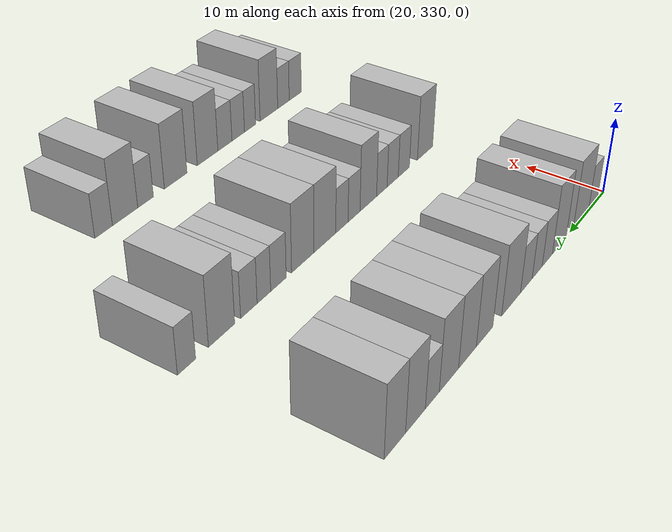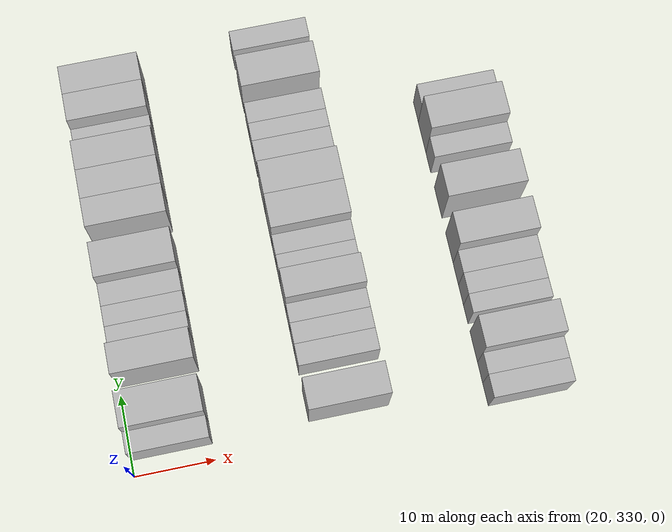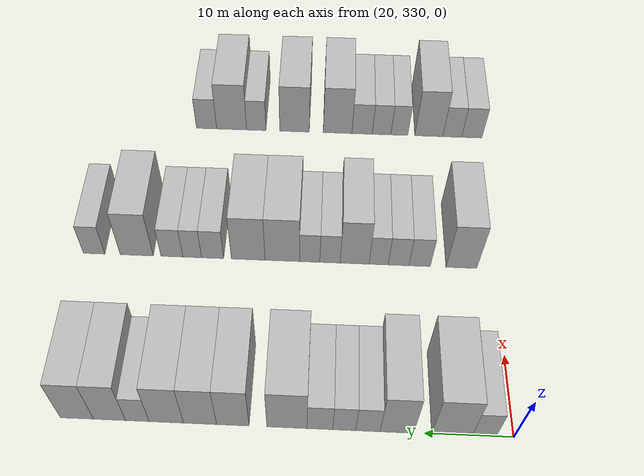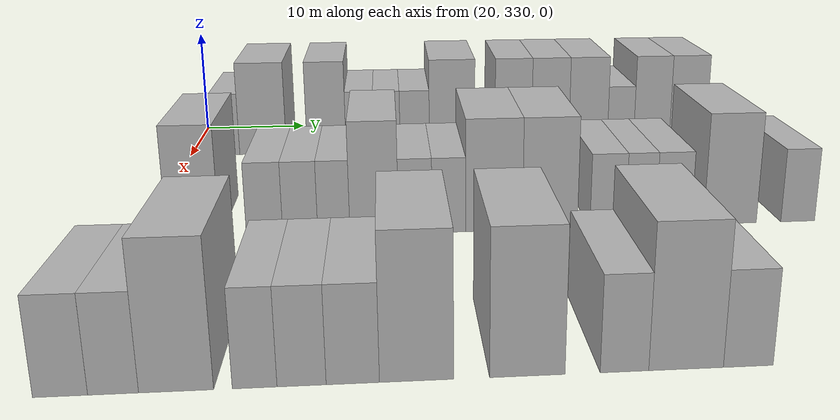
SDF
<sdf version="1.6">
 <world name="default">
  <model name="building_175">
   <static>1</static>
   <pose>25.0000 333.3231 0 0.000000 0.000000 0.000000</pose>
   <link name="link">
    <pose>0 0 3.00 0 0 0</pose>
    <collision name="collision"><geometry><box><size>10.0000 2.6648 6.0000</size></box></geometry></collision>
    <visual name="visual">
     <cast_shadows>0</cast_shadows>
     <geometry><box><size>10.0000 2.6648 6.0000</size></box></geometry>
     <material>
      <script>
       <uri>model://HANNAS_wall/materials/scripts</uri>
       <uri>model://HANNAS_wall/materials/textures</uri>
       <name>vrc/HANNAS_wall</name>
      </script>
     </material>
    </visual>
   </link>
  </model>
  <model name="building_176">
   <static>1</static>
   <pose>25.0000 336.8975 0 0.000000 0.000000 0.000000</pose>
   <link name="link">
    <pose>0 0 4.50 0 0 0</pose>
    <collision name="collision"><geometry><box><size>10.0000 4.4841 9.0000</size></box></geometry></collision>
    <visual name="visual">
     <cast_shadows>0</cast_shadows>
     <geometry><box><size>10.0000 4.4841 9.0000</size></box></geometry>
     <material>
      <script>
       <uri>model://HANNAS_wall/materials/scripts</uri>
       <uri>model://HANNAS_wall/materials/textures</uri>
       <name>vrc/HANNAS_wall</name>
      </script>
     </material>
    </visual>
   </link>
  </model>
  <model name="building_177">
   <static>1</static>
   <pose>25.0000 343.0223 0 0.000000 0.000000 0.000000</pose>
   <link name="link">
    <pose>0 0 4.50 0 0 0</pose>
    <collision name="collision"><geometry><box><size>10.0000 3.7653 9.0000</size></box></geometry></collision>
    <visual name="visual">
     <cast_shadows>0</cast_shadows>
     <geometry><box><size>10.0000 3.7653 9.0000</size></box></geometry>
     <material>
      <script>
       <uri>model://HANNAS_wall/materials/scripts</uri>
       <uri>model://HANNAS_wall/materials/textures</uri>
       <name>vrc/HANNAS_wall</name>
      </script>
     </material>
    </visual>
   </link>
  </model>
  <model name="building_178">
   <static>1</static>
   <pose>25.0000 346.2578 0 0.000000 0.000000 0.000000</pose>
   <link name="link">
    <pose>0 0 3.00 0 0 0</pose>
    <collision name="collision"><geometry><box><size>10.0000 2.7056 6.0000</size></box></geometry></collision>
    <visual name="visual">
     <cast_shadows>0</cast_shadows>
     <geometry><box><size>10.0000 2.7056 6.0000</size></box></geometry>
     <material>
      <script>
       <uri>model://HANNAS_wall/materials/scripts</uri>
       <uri>model://HANNAS_wall/materials/textures</uri>
       <name>vrc/HANNAS_wall</name>
      </script>
     </material>
    </visual>
   </link>
  </model>
  <model name="building_179">
   <static>1</static>
   <pose>25.0000 348.8971 0 0.000000 0.000000 0.000000</pose>
   <link name="link">
    <pose>0 0 3.00 0 0 0</pose>
    <collision name="collision"><geometry><box><size>10.0000 2.5731 6.0000</size></box></geometry></collision>
    <visual name="visual">
     <cast_shadows>0</cast_shadows>
     <geometry><box><size>10.0000 2.5731 6.0000</size></box></geometry>
     <material>
      <script>
       <uri>model://HANNAS_wall/materials/scripts</uri>
       <uri>model://HANNAS_wall/materials/textures</uri>
       <name>vrc/HANNAS_wall</name>
      </script>
     </material>
    </visual>
   </link>
  </model>
  <model name="building_180">
   <static>1</static>
   <pose>25.0000 351.6248 0 0.000000 0.000000 0.000000</pose>
   <link name="link">
    <pose>0 0 3.00 0 0 0</pose>
    <collision name="collision"><geometry><box><size>10.0000 2.8823 6.0000</size></box></geometry></collision>
    <visual name="visual">
     <cast_shadows>0</cast_shadows>
     <geometry><box><size>10.0000 2.8823 6.0000</size></box></geometry>
     <material>
      <script>
       <uri>model://HANNAS_wall/materials/scripts</uri>
       <uri>model://HANNAS_wall/materials/textures</uri>
       <name>vrc/HANNAS_wall</name>
      </script>
     </material>
    </visual>
   </link>
  </model>
  <model name="building_181">
   <static>1</static>
   <pose>25.0000 355.3046 0 0.000000 0.000000 0.000000</pose>
   <link name="link">
    <pose>0 0 4.50 0 0 0</pose>
    <collision name="collision"><geometry><box><size>10.0000 4.4775 9.0000</size></box></geometry></collision>
    <visual name="visual">
     <cast_shadows>0</cast_shadows>
     <geometry><box><size>10.0000 4.4775 9.0000</size></box></geometry>
     <material>
      <script>
       <uri>model://HANNAS_wall/materials/scripts</uri>
       <uri>model://HANNAS_wall/materials/textures</uri>
       <name>vrc/HANNAS_wall</name>
      </script>
     </material>
    </visual>
   </link>
  </model>
  <model name="building_182">
   <static>1</static>
   <pose>25.0000 361.3709 0 0.000000 0.000000 0.000000</pose>
   <link name="link">
    <pose>0 0 4.50 0 0 0</pose>
    <collision name="collision"><geometry><box><size>10.0000 3.6550 9.0000</size></box></geometry></collision>
    <visual name="visual">
     <cast_shadows>0</cast_shadows>
     <geometry><box><size>10.0000 3.6550 9.0000</size></box></geometry>
     <material>
      <script>
       <uri>model://HANNAS_wall/materials/scripts</uri>
       <uri>model://HANNAS_wall/materials/textures</uri>
       <name>vrc/HANNAS_wall</name>
      </script>
     </material>
    </visual>
   </link>
  </model>
  <model name="building_183">
   <static>1</static>
   <pose>25.0000 365.0693 0 0.000000 0.000000 0.000000</pose>
   <link name="link">
    <pose>0 0 4.50 0 0 0</pose>
    <collision name="collision"><geometry><box><size>10.0000 3.7419 9.0000</size></box></geometry></collision>
    <visual name="visual">
     <cast_shadows>0</cast_shadows>
     <geometry><box><size>10.0000 3.7419 9.0000</size></box></geometry>
     <material>
      <script>
       <uri>model://HANNAS_wall/materials/scripts</uri>
       <uri>model://HANNAS_wall/materials/textures</uri>
       <name>vrc/HANNAS_wall</name>
      </script>
     </material>
    </visual>
   </link>
  </model>
  <model name="building_184">
   <static>1</static>
   <pose>25.0000 368.8817 0 0.000000 0.000000 0.000000</pose>
   <link name="link">
    <pose>0 0 4.50 0 0 0</pose>
    <collision name="collision"><geometry><box><size>10.0000 3.8830 9.0000</size></box></geometry></collision>
    <visual name="visual">
     <cast_shadows>0</cast_shadows>
     <geometry><box><size>10.0000 3.8830 9.0000</size></box></geometry>
     <material>
      <script>
       <uri>model://HANNAS_wall/materials/scripts</uri>
       <uri>model://HANNAS_wall/materials/textures</uri>
       <name>vrc/HANNAS_wall</name>
      </script>
     </material>
    </visual>
   </link>
  </model>
  <model name="building_185">
   <static>1</static>
   <pose>25.0000 372.1567 0 0.000000 0.000000 0.000000</pose>
   <link name="link">
    <pose>0 0 3.00 0 0 0</pose>
    <collision name="collision"><geometry><box><size>10.0000 2.6670 6.0000</size></box></geometry></collision>
    <visual name="visual">
     <cast_shadows>0</cast_shadows>
     <geometry><box><size>10.0000 2.6670 6.0000</size></box></geometry>
     <material>
      <script>
       <uri>model://HANNAS_wall/materials/scripts</uri>
       <uri>model://HANNAS_wall/materials/textures</uri>
       <name>vrc/HANNAS_wall</name>
      </script>
     </material>
    </visual>
   </link>
  </model>
  <model name="building_186">
   <static>1</static>
   <pose>25.0000 375.3118 0 0.000000 0.000000 0.000000</pose>
   <link name="link">
    <pose>0 0 4.50 0 0 0</pose>
    <collision name="collision"><geometry><box><size>10.0000 3.6430 9.0000</size></box></geometry></collision>
    <visual name="visual">
     <cast_shadows>0</cast_shadows>
     <geometry><box><size>10.0000 3.6430 9.0000</size></box></geometry>
     <material>
      <script>
       <uri>model://HANNAS_wall/materials/scripts</uri>
       <uri>model://HANNAS_wall/materials/textures</uri>
       <name>vrc/HANNAS_wall</name>
      </script>
     </material>
    </visual>
   </link>
  </model>
  <model name="building_187">
   <static>1</static>
   <pose>25.0000 379.0142 0 0.000000 0.000000 0.000000</pose>
   <link name="link">
    <pose>0 0 4.50 0 0 0</pose>
    <collision name="collision"><geometry><box><size>10.0000 3.7618 9.0000</size></box></geometry></collision>
    <visual name="visual">
     <cast_shadows>0</cast_shadows>
     <geometry><box><size>10.0000 3.7618 9.0000</size></box></geometry>
     <material>
      <script>
       <uri>model://HANNAS_wall/materials/scripts</uri>
       <uri>model://HANNAS_wall/materials/textures</uri>
       <name>vrc/HANNAS_wall</name>
      </script>
     </material>
    </visual>
   </link>
  </model>
  <model name="building_358">
   <static>1</static>
   <pose>47.0000 334.1967 0 0.000000 0.000000 0.000000</pose>
   <link name="link">
    <pose>0 0 4.50 0 0 0</pose>
    <collision name="collision"><geometry><box><size>10.0000 3.9026 9.0000</size></box></geometry></collision>
    <visual name="visual">
     <cast_shadows>0</cast_shadows>
     <geometry><box><size>10.0000 3.9026 9.0000</size></box></geometry>
     <material>
      <script>
       <uri>model://HANNAS_wall/materials/scripts</uri>
       <uri>model://HANNAS_wall/materials/textures</uri>
       <name>vrc/HANNAS_wall</name>
      </script>
     </material>
    </visual>
   </link>
  </model>
  <model name="building_359">
   <static>1</static>
   <pose>47.0000 339.5084 0 0.000000 0.000000 0.000000</pose>
   <link name="link">
    <pose>0 0 3.00 0 0 0</pose>
    <collision name="collision"><geometry><box><size>10.0000 2.7208 6.0000</size></box></geometry></collision>
    <visual name="visual">
     <cast_shadows>0</cast_shadows>
     <geometry><box><size>10.0000 2.7208 6.0000</size></box></geometry>
     <material>
      <script>
       <uri>model://HANNAS_wall/materials/scripts</uri>
       <uri>model://HANNAS_wall/materials/textures</uri>
       <name>vrc/HANNAS_wall</name>
      </script>
     </material>
    </visual>
   </link>
  </model>
  <model name="building_360">
   <static>1</static>
   <pose>47.0000 342.1871 0 0.000000 0.000000 0.000000</pose>
   <link name="link">
    <pose>0 0 3.00 0 0 0</pose>
    <collision name="collision"><geometry><box><size>10.0000 2.6365 6.0000</size></box></geometry></collision>
    <visual name="visual">
     <cast_shadows>0</cast_shadows>
     <geometry><box><size>10.0000 2.6365 6.0000</size></box></geometry>
     <material>
      <script>
       <uri>model://HANNAS_wall/materials/scripts</uri>
       <uri>model://HANNAS_wall/materials/textures</uri>
       <name>vrc/HANNAS_wall</name>
      </script>
     </material>
    </visual>
   </link>
  </model>
  <model name="building_361">
   <static>1</static>
   <pose>47.0000 344.7224 0 0.000000 0.000000 0.000000</pose>
   <link name="link">
    <pose>0 0 3.00 0 0 0</pose>
    <collision name="collision"><geometry><box><size>10.0000 2.4341 6.0000</size></box></geometry></collision>
    <visual name="visual">
     <cast_shadows>0</cast_shadows>
     <geometry><box><size>10.0000 2.4341 6.0000</size></box></geometry>
     <material>
      <script>
       <uri>model://HANNAS_wall/materials/scripts</uri>
       <uri>model://HANNAS_wall/materials/textures</uri>
       <name>vrc/HANNAS_wall</name>
      </script>
     </material>
    </visual>
   </link>
  </model>
  <model name="building_362">
   <static>1</static>
   <pose>47.0000 347.7892 0 0.000000 0.000000 0.000000</pose>
   <link name="link">
    <pose>0 0 4.50 0 0 0</pose>
    <collision name="collision"><geometry><box><size>10.0000 3.6996 9.0000</size></box></geometry></collision>
    <visual name="visual">
     <cast_shadows>0</cast_shadows>
     <geometry><box><size>10.0000 3.6996 9.0000</size></box></geometry>
     <material>
      <script>
       <uri>model://HANNAS_wall/materials/scripts</uri>
       <uri>model://HANNAS_wall/materials/textures</uri>
       <name>vrc/HANNAS_wall</name>
      </script>
     </material>
    </visual>
   </link>
  </model>
  <model name="building_363">
   <static>1</static>
   <pose>47.0000 350.9331 0 0.000000 0.000000 0.000000</pose>
   <link name="link">
    <pose>0 0 3.00 0 0 0</pose>
    <collision name="collision"><geometry><box><size>10.0000 2.5880 6.0000</size></box></geometry></collision>
    <visual name="visual">
     <cast_shadows>0</cast_shadows>
     <geometry><box><size>10.0000 2.5880 6.0000</size></box></geometry>
     <material>
      <script>
       <uri>model://HANNAS_wall/materials/scripts</uri>
       <uri>model://HANNAS_wall/materials/textures</uri>
       <name>vrc/HANNAS_wall</name>
      </script>
     </material>
    </visual>
   </link>
  </model>
  <model name="building_364">
   <static>1</static>
   <pose>47.0000 353.5214 0 0.000000 0.000000 0.000000</pose>
   <link name="link">
    <pose>0 0 3.00 0 0 0</pose>
    <collision name="collision"><geometry><box><size>10.0000 2.5888 6.0000</size></box></geometry></collision>
    <visual name="visual">
     <cast_shadows>0</cast_shadows>
     <geometry><box><size>10.0000 2.5888 6.0000</size></box></geometry>
     <material>
      <script>
       <uri>model://HANNAS_wall/materials/scripts</uri>
       <uri>model://HANNAS_wall/materials/textures</uri>
       <name>vrc/HANNAS_wall</name>
      </script>
     </material>
    </visual>
   </link>
  </model>
  <model name="building_365">
   <static>1</static>
   <pose>47.0000 357.0240 0 0.000000 0.000000 0.000000</pose>
   <link name="link">
    <pose>0 0 4.50 0 0 0</pose>
    <collision name="collision"><geometry><box><size>10.0000 4.4163 9.0000</size></box></geometry></collision>
    <visual name="visual">
     <cast_shadows>0</cast_shadows>
     <geometry><box><size>10.0000 4.4163 9.0000</size></box></geometry>
     <material>
      <script>
       <uri>model://HANNAS_wall/materials/scripts</uri>
       <uri>model://HANNAS_wall/materials/textures</uri>
       <name>vrc/HANNAS_wall</name>
      </script>
     </material>
    </visual>
   </link>
  </model>
  <model name="building_366">
   <static>1</static>
   <pose>47.0000 361.3874 0 0.000000 0.000000 0.000000</pose>
   <link name="link">
    <pose>0 0 4.50 0 0 0</pose>
    <collision name="collision"><geometry><box><size>10.0000 4.3106 9.0000</size></box></geometry></collision>
    <visual name="visual">
     <cast_shadows>0</cast_shadows>
     <geometry><box><size>10.0000 4.3106 9.0000</size></box></geometry>
     <material>
      <script>
       <uri>model://HANNAS_wall/materials/scripts</uri>
       <uri>model://HANNAS_wall/materials/textures</uri>
       <name>vrc/HANNAS_wall</name>
      </script>
     </material>
    </visual>
   </link>
  </model>
  <model name="building_367">
   <static>1</static>
   <pose>47.0000 365.9577 0 0.000000 0.000000 0.000000</pose>
   <link name="link">
    <pose>0 0 3.00 0 0 0</pose>
    <collision name="collision"><geometry><box><size>10.0000 2.8300 6.0000</size></box></geometry></collision>
    <visual name="visual">
     <cast_shadows>0</cast_shadows>
     <geometry><box><size>10.0000 2.8300 6.0000</size></box></geometry>
     <material>
      <script>
       <uri>model://HANNAS_wall/materials/scripts</uri>
       <uri>model://HANNAS_wall/materials/textures</uri>
       <name>vrc/HANNAS_wall</name>
      </script>
     </material>
    </visual>
   </link>
  </model>
  <model name="building_368">
   <static>1</static>
   <pose>47.0000 368.5765 0 0.000000 0.000000 0.000000</pose>
   <link name="link">
    <pose>0 0 3.00 0 0 0</pose>
    <collision name="collision"><geometry><box><size>10.0000 2.4076 6.0000</size></box></geometry></collision>
    <visual name="visual">
     <cast_shadows>0</cast_shadows>
     <geometry><box><size>10.0000 2.4076 6.0000</size></box></geometry>
     <material>
      <script>
       <uri>model://HANNAS_wall/materials/scripts</uri>
       <uri>model://HANNAS_wall/materials/textures</uri>
       <name>vrc/HANNAS_wall</name>
      </script>
     </material>
    </visual>
   </link>
  </model>
  <model name="building_369">
   <static>1</static>
   <pose>47.0000 371.1986 0 0.000000 0.000000 0.000000</pose>
   <link name="link">
    <pose>0 0 3.00 0 0 0</pose>
    <collision name="collision"><geometry><box><size>10.0000 2.8366 6.0000</size></box></geometry></collision>
    <visual name="visual">
     <cast_shadows>0</cast_shadows>
     <geometry><box><size>10.0000 2.8366 6.0000</size></box></geometry>
     <material>
      <script>
       <uri>model://HANNAS_wall/materials/scripts</uri>
       <uri>model://HANNAS_wall/materials/textures</uri>
       <name>vrc/HANNAS_wall</name>
      </script>
     </material>
    </visual>
   </link>
  </model>
  <model name="building_370">
   <static>1</static>
   <pose>47.0000 375.7524 0 0.000000 0.000000 0.000000</pose>
   <link name="link">
    <pose>0 0 4.50 0 0 0</pose>
    <collision name="collision"><geometry><box><size>10.0000 4.2710 9.0000</size></box></geometry></collision>
    <visual name="visual">
     <cast_shadows>0</cast_shadows>
     <geometry><box><size>10.0000 4.2710 9.0000</size></box></geometry>
     <material>
      <script>
       <uri>model://HANNAS_wall/materials/scripts</uri>
       <uri>model://HANNAS_wall/materials/textures</uri>
       <name>vrc/HANNAS_wall</name>
      </script>
     </material>
    </visual>
   </link>
  </model>
  <model name="building_371">
   <static>1</static>
   <pose>47.0000 381.2712 0 0.000000 0.000000 0.000000</pose>
   <link name="link">
    <pose>0 0 3.00 0 0 0</pose>
    <collision name="collision"><geometry><box><size>10.0000 2.7666 6.0000</size></box></geometry></collision>
    <visual name="visual">
     <cast_shadows>0</cast_shadows>
     <geometry><box><size>10.0000 2.7666 6.0000</size></box></geometry>
     <material>
      <script>
       <uri>model://HANNAS_wall/materials/scripts</uri>
       <uri>model://HANNAS_wall/materials/textures</uri>
       <name>vrc/HANNAS_wall</name>
      </script>
     </material>
    </visual>
   </link>
  </model>
  <model name="building_540">
   <static>1</static>
   <pose>69.0000 331.0896 0 0.000000 0.000000 0.000000</pose>
   <link name="link">
    <pose>0 0 3.00 0 0 0</pose>
    <collision name="collision"><geometry><box><size>10.0000 2.8832 6.0000</size></box></geometry></collision>
    <visual name="visual">
     <cast_shadows>0</cast_shadows>
     <geometry><box><size>10.0000 2.8832 6.0000</size></box></geometry>
     <material>
      <script>
       <uri>model://HANNAS_wall/materials/scripts</uri>
       <uri>model://HANNAS_wall/materials/textures</uri>
       <name>vrc/HANNAS_wall</name>
      </script>
     </material>
    </visual>
   </link>
  </model>
  <model name="building_541">
   <static>1</static>
   <pose>69.0000 333.8739 0 0.000000 0.000000 0.000000</pose>
   <link name="link">
    <pose>0 0 3.00 0 0 0</pose>
    <collision name="collision"><geometry><box><size>10.0000 2.6853 6.0000</size></box></geometry></collision>
    <visual name="visual">
     <cast_shadows>0</cast_shadows>
     <geometry><box><size>10.0000 2.6853 6.0000</size></box></geometry>
     <material>
      <script>
       <uri>model://HANNAS_wall/materials/scripts</uri>
       <uri>model://HANNAS_wall/materials/textures</uri>
       <name>vrc/HANNAS_wall</name>
      </script>
     </material>
    </visual>
   </link>
  </model>
  <model name="building_542">
   <static>1</static>
   <pose>69.0000 337.2133 0 0.000000 0.000000 0.000000</pose>
   <link name="link">
    <pose>0 0 4.50 0 0 0</pose>
    <collision name="collision"><geometry><box><size>10.0000 3.9936 9.0000</size></box></geometry></collision>
    <visual name="visual">
     <cast_shadows>0</cast_shadows>
     <geometry><box><size>10.0000 3.9936 9.0000</size></box></geometry>
     <material>
      <script>
       <uri>model://HANNAS_wall/materials/scripts</uri>
       <uri>model://HANNAS_wall/materials/textures</uri>
       <name>vrc/HANNAS_wall</name>
      </script>
     </material>
    </visual>
   </link>
  </model>
  <model name="building_543">
   <static>1</static>
   <pose>69.0000 341.4170 0 0.000000 0.000000 0.000000</pose>
   <link name="link">
    <pose>0 0 3.00 0 0 0</pose>
    <collision name="collision"><geometry><box><size>10.0000 2.4136 6.0000</size></box></geometry></collision>
    <visual name="visual">
     <cast_shadows>0</cast_shadows>
     <geometry><box><size>10.0000 2.4136 6.0000</size></box></geometry>
     <material>
      <script>
       <uri>model://HANNAS_wall/materials/scripts</uri>
       <uri>model://HANNAS_wall/materials/textures</uri>
       <name>vrc/HANNAS_wall</name>
      </script>
     </material>
    </visual>
   </link>
  </model>
  <model name="building_544">
   <static>1</static>
   <pose>69.0000 343.9583 0 0.000000 0.000000 0.000000</pose>
   <link name="link">
    <pose>0 0 3.00 0 0 0</pose>
    <collision name="collision"><geometry><box><size>10.0000 2.6691 6.0000</size></box></geometry></collision>
    <visual name="visual">
     <cast_shadows>0</cast_shadows>
     <geometry><box><size>10.0000 2.6691 6.0000</size></box></geometry>
     <material>
      <script>
       <uri>model://HANNAS_wall/materials/scripts</uri>
       <uri>model://HANNAS_wall/materials/textures</uri>
       <name>vrc/HANNAS_wall</name>
      </script>
     </material>
    </visual>
   </link>
  </model>
  <model name="building_545">
   <static>1</static>
   <pose>69.0000 346.7526 0 0.000000 0.000000 0.000000</pose>
   <link name="link">
    <pose>0 0 3.00 0 0 0</pose>
    <collision name="collision"><geometry><box><size>10.0000 2.9195 6.0000</size></box></geometry></collision>
    <visual name="visual">
     <cast_shadows>0</cast_shadows>
     <geometry><box><size>10.0000 2.9195 6.0000</size></box></geometry>
     <material>
      <script>
       <uri>model://HANNAS_wall/materials/scripts</uri>
       <uri>model://HANNAS_wall/materials/textures</uri>
       <name>vrc/HANNAS_wall</name>
      </script>
     </material>
    </visual>
   </link>
  </model>
  <model name="building_546">
   <static>1</static>
   <pose>69.0000 350.2705 0 0.000000 0.000000 0.000000</pose>
   <link name="link">
    <pose>0 0 4.50 0 0 0</pose>
    <collision name="collision"><geometry><box><size>10.0000 4.1163 9.0000</size></box></geometry></collision>
    <visual name="visual">
     <cast_shadows>0</cast_shadows>
     <geometry><box><size>10.0000 4.1163 9.0000</size></box></geometry>
     <material>
      <script>
       <uri>model://HANNAS_wall/materials/scripts</uri>
       <uri>model://HANNAS_wall/materials/textures</uri>
       <name>vrc/HANNAS_wall</name>
      </script>
     </material>
    </visual>
   </link>
  </model>
  <model name="building_547">
   <static>1</static>
   <pose>69.0000 356.4556 0 0.000000 0.000000 0.000000</pose>
   <link name="link">
    <pose>0 0 4.50 0 0 0</pose>
    <collision name="collision"><geometry><box><size>10.0000 4.2539 9.0000</size></box></geometry></collision>
    <visual name="visual">
     <cast_shadows>0</cast_shadows>
     <geometry><box><size>10.0000 4.2539 9.0000</size></box></geometry>
     <material>
      <script>
       <uri>model://HANNAS_wall/materials/scripts</uri>
       <uri>model://HANNAS_wall/materials/textures</uri>
       <name>vrc/HANNAS_wall</name>
      </script>
     </material>
    </visual>
   </link>
  </model>
  <model name="building_548">
   <static>1</static>
   <pose>69.0000 361.9734 0 0.000000 0.000000 0.000000</pose>
   <link name="link">
    <pose>0 0 3.00 0 0 0</pose>
    <collision name="collision"><geometry><box><size>10.0000 2.7816 6.0000</size></box></geometry></collision>
    <visual name="visual">
     <cast_shadows>0</cast_shadows>
     <geometry><box><size>10.0000 2.7816 6.0000</size></box></geometry>
     <material>
      <script>
       <uri>model://HANNAS_wall/materials/scripts</uri>
       <uri>model://HANNAS_wall/materials/textures</uri>
       <name>vrc/HANNAS_wall</name>
      </script>
     </material>
    </visual>
   </link>
  </model>
  <model name="building_549">
   <static>1</static>
   <pose>69.0000 365.5258 0 0.000000 0.000000 0.000000</pose>
   <link name="link">
    <pose>0 0 4.50 0 0 0</pose>
    <collision name="collision"><geometry><box><size>10.0000 4.3233 9.0000</size></box></geometry></collision>
    <visual name="visual">
     <cast_shadows>0</cast_shadows>
     <geometry><box><size>10.0000 4.3233 9.0000</size></box></geometry>
     <material>
      <script>
       <uri>model://HANNAS_wall/materials/scripts</uri>
       <uri>model://HANNAS_wall/materials/textures</uri>
       <name>vrc/HANNAS_wall</name>
      </script>
     </material>
    </visual>
   </link>
  </model>
  <model name="building_550">
   <static>1</static>
   <pose>69.0000 369.1444 0 0.000000 0.000000 0.000000</pose>
   <link name="link">
    <pose>0 0 3.00 0 0 0</pose>
    <collision name="collision"><geometry><box><size>10.0000 2.9138 6.0000</size></box></geometry></collision>
    <visual name="visual">
     <cast_shadows>0</cast_shadows>
     <geometry><box><size>10.0000 2.9138 6.0000</size></box></geometry>
     <material>
      <script>
       <uri>model://HANNAS_wall/materials/scripts</uri>
       <uri>model://HANNAS_wall/materials/textures</uri>
       <name>vrc/HANNAS_wall</name>
      </script>
     </material>
    </visual>
   </link>
  </model>
 </world>
</sdf>
